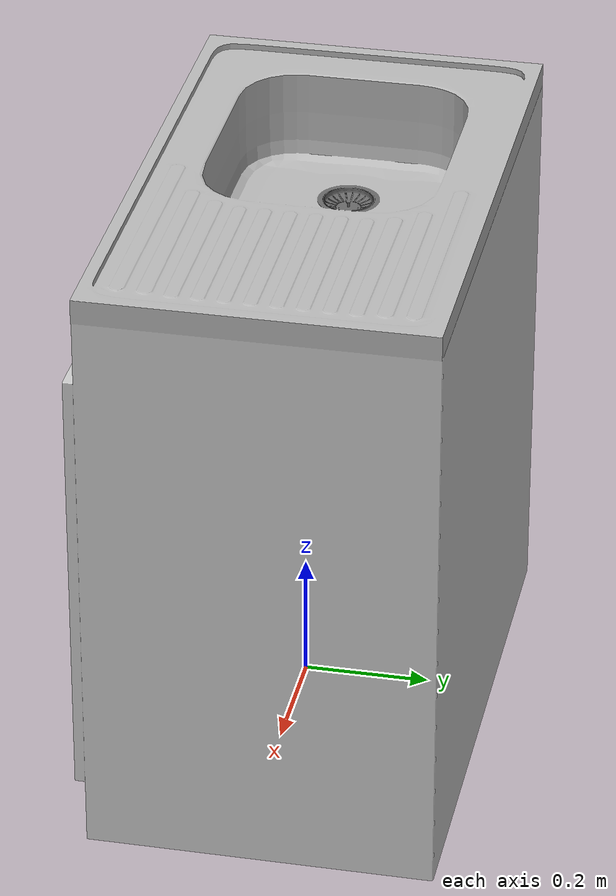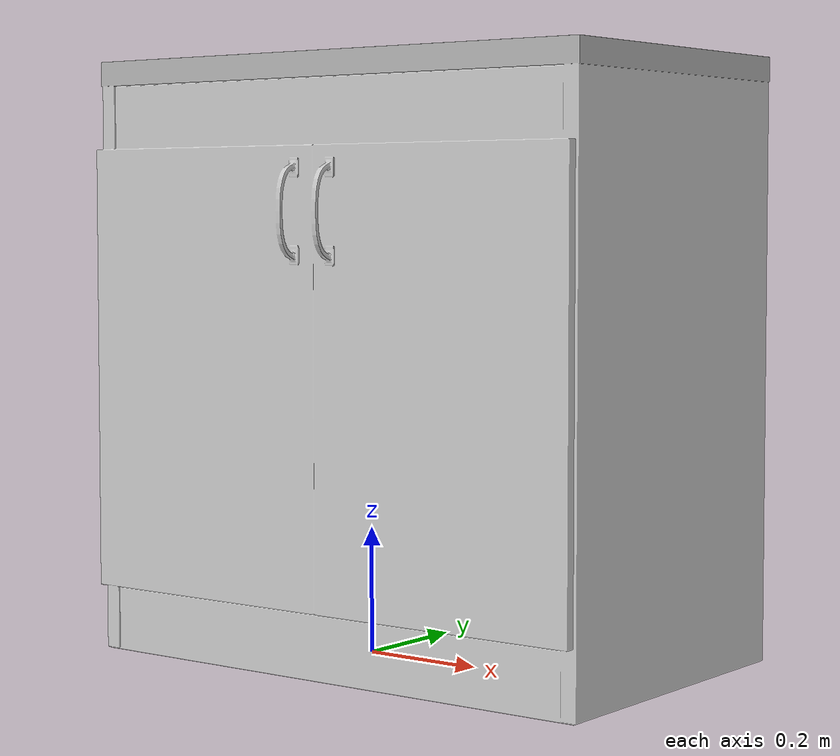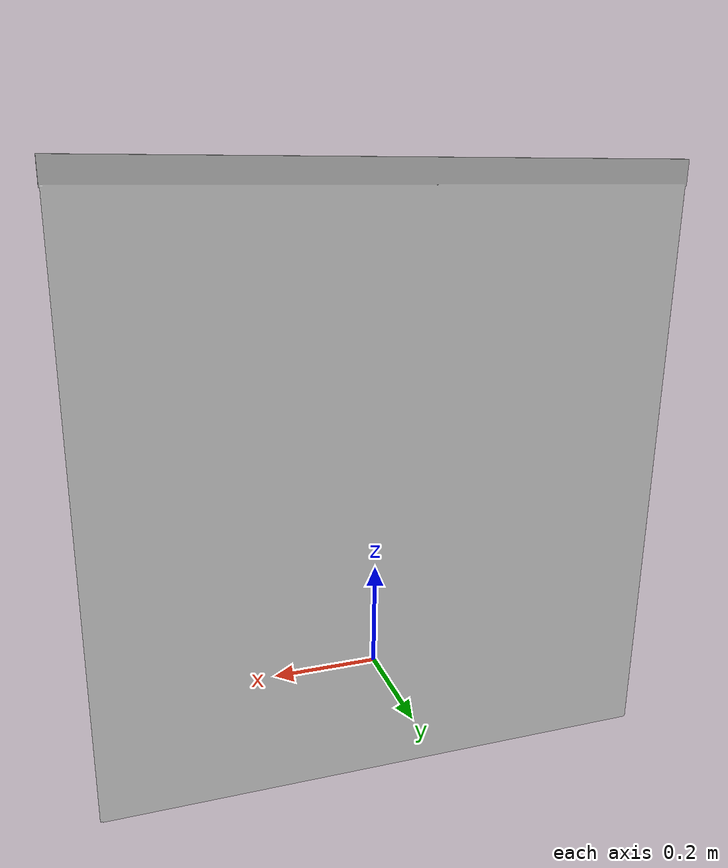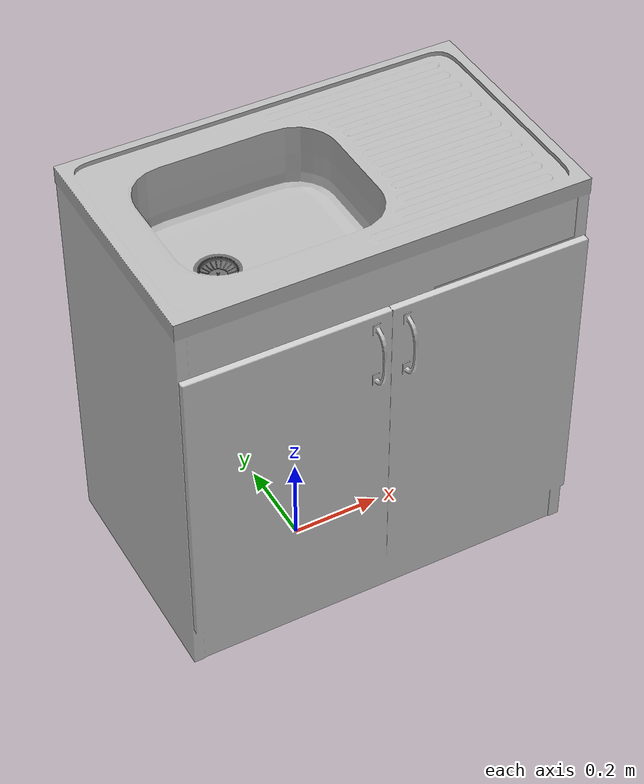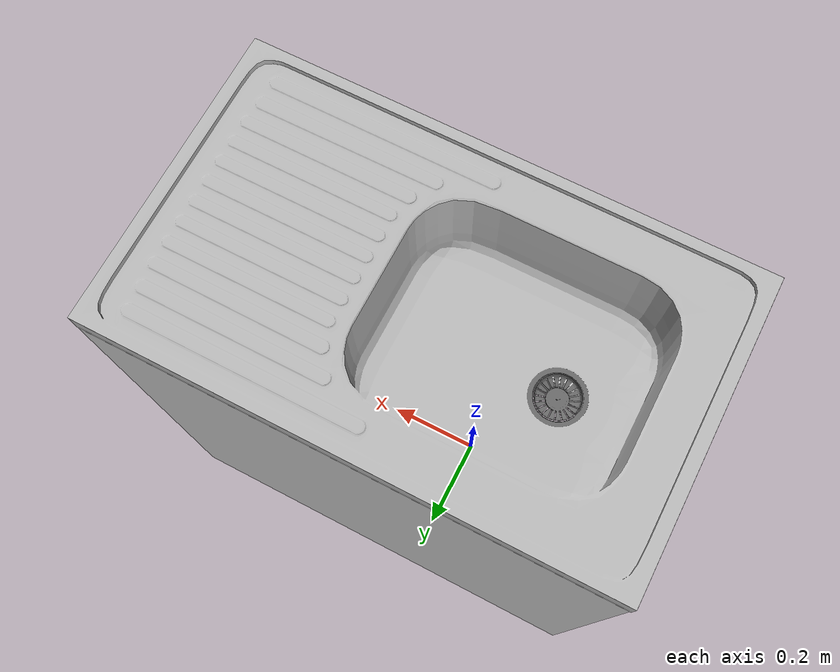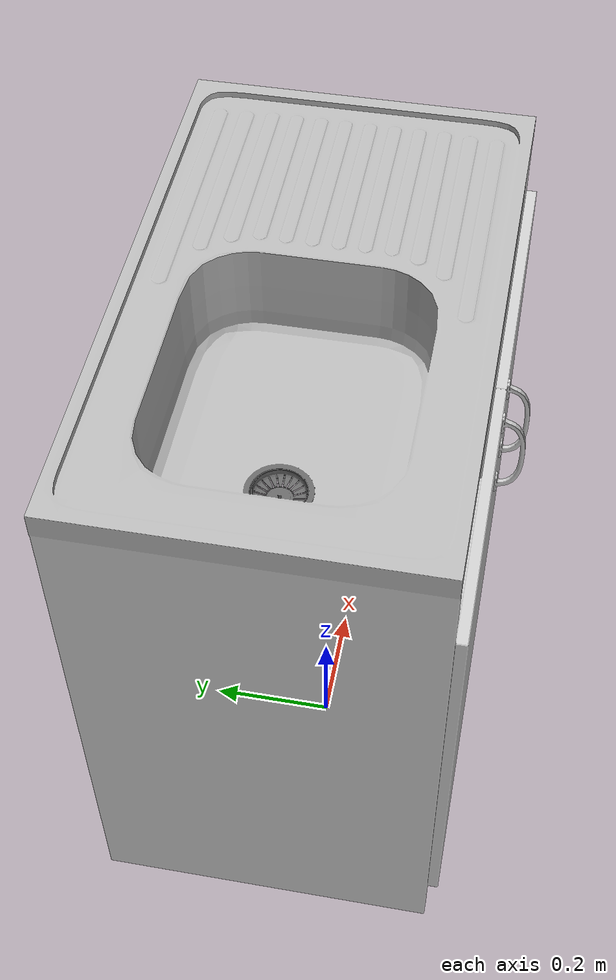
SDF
<?xml version="1.0" ?>
<sdf version="1.5">
  <model name="sink">
    <link name="link">
      <pose>0 0 0 0 0 0</pose>
      <collision name="collision">
        <geometry>
          <mesh>
            <uri>model://sink/meshes/model.dae</uri>
          </mesh>
        </geometry>
      </collision>
      <visual name="visual">
        <geometry>
          <mesh>
            <uri>model://sink/meshes/model.dae</uri>
          </mesh>
        </geometry>
      </visual>
    </link>
    <static>1</static>
  </model>
</sdf>
